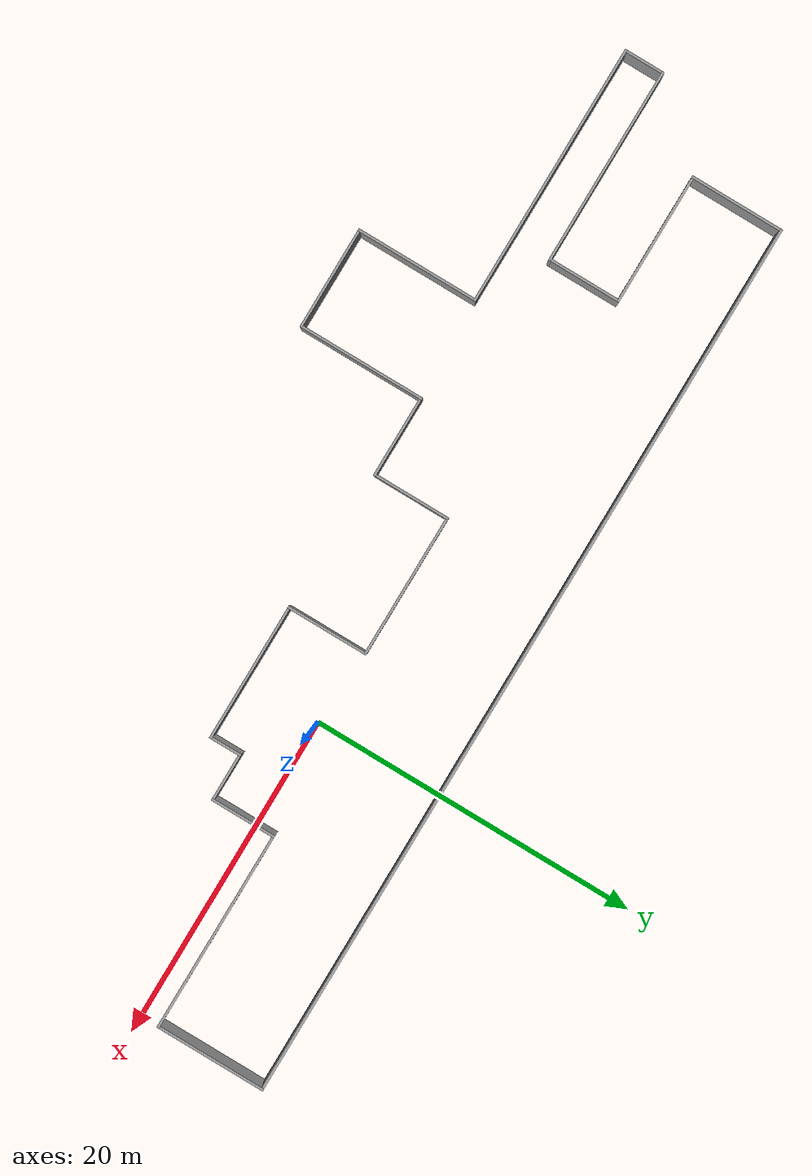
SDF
<?xml version='1.0'?>
<sdf version='1.7'>
  <model name='test_world'>
    <pose>-10.8 -2.095 0 0 -0 0</pose>
    <link name='Wall_0'>
      <collision name='Wall_0_Collision'>
        <geometry>
          <box>
            <size>8.25 0.15 2.5</size>
          </box>
        </geometry>
        <pose>0 0 1.25 0 -0 0</pose>
      </collision>
      <visual name='Wall_0_Visual'>
        <pose>0 0 1.25 0 -0 0</pose>
        <geometry>
          <box>
            <size>8.25 0.15 2.5</size>
          </box>
        </geometry>
        <material>
          <script>
            <uri>file://media/materials/scripts/gazebo.material</uri>
            <name>Gazebo/Grey</name>
          </script>
          <ambient>1 1 1 1</ambient>
        </material>
        <meta>
          <layer>0</layer>
        </meta>
      </visual>
      <pose>10.3 -2.475 0 0 -0 0</pose>
    </link>
    <link name='Wall_1'>
      <collision name='Wall_1_Collision'>
        <geometry>
          <box>
            <size>2 0.15 2.5</size>
          </box>
        </geometry>
        <pose>0 0 1.25 0 -0 0</pose>
      </collision>
      <visual name='Wall_1_Visual'>
        <pose>0 0 1.25 0 -0 0</pose>
        <geometry>
          <box>
            <size>2 0.15 2.5</size>
          </box>
        </geometry>
        <material>
          <script>
            <uri>file://media/materials/scripts/gazebo.material</uri>
            <name>Gazebo/Grey</name>
          </script>
          <ambient>1 1 1 1</ambient>
        </material>
        <meta>
          <layer>0</layer>
        </meta>
      </visual>
      <pose>14.35 -1.55 0 0 -0 1.5708</pose>
    </link>
    <link name='Wall_10'>
      <collision name='Wall_10_Collision'>
        <geometry>
          <box>
            <size>12 0.15 2.5</size>
          </box>
        </geometry>
        <pose>0 0 1.25 0 -0 0</pose>
      </collision>
      <visual name='Wall_10_Visual'>
        <pose>0 0 1.25 0 -0 0</pose>
        <geometry>
          <box>
            <size>12 0.15 2.5</size>
          </box>
        </geometry>
        <material>
          <script>
            <uri>file://media/materials/scripts/gazebo.material</uri>
            <name>Gazebo/Grey</name>
          </script>
          <ambient>1 1 1 1</ambient>
        </material>
        <meta>
          <layer>0</layer>
        </meta>
      </visual>
      <pose>-23.375 -0.125 0 0 -0 3.14159</pose>
    </link>
    <link name='Wall_11'>
      <collision name='Wall_11_Collision'>
        <geometry>
          <box>
            <size>2.5 0.15 2.5</size>
          </box>
        </geometry>
        <pose>0 0 1.25 0 -0 0</pose>
      </collision>
      <visual name='Wall_11_Visual'>
        <pose>0 0 1.25 0 -0 0</pose>
        <geometry>
          <box>
            <size>2.5 0.15 2.5</size>
          </box>
        </geometry>
        <material>
          <script>
            <uri>file://media/materials/scripts/gazebo.material</uri>
            <name>Gazebo/Grey</name>
          </script>
          <ambient>1 1 1 1</ambient>
        </material>
        <meta>
          <layer>0</layer>
        </meta>
      </visual>
      <pose>-29.3 -1.3 0 0 -0 -1.5708</pose>
    </link>
    <link name='Wall_12'>
      <collision name='Wall_12_Collision'>
        <geometry>
          <box>
            <size>16 0.15 2.5</size>
          </box>
        </geometry>
        <pose>0 0 1.25 0 -0 0</pose>
      </collision>
      <visual name='Wall_12_Visual'>
        <pose>0 0 1.25 0 -0 0</pose>
        <geometry>
          <box>
            <size>16 0.15 2.5</size>
          </box>
        </geometry>
        <material>
          <script>
            <uri>file://media/materials/scripts/gazebo.material</uri>
            <name>Gazebo/Grey</name>
          </script>
          <ambient>1 1 1 1</ambient>
        </material>
        <meta>
          <layer>0</layer>
        </meta>
      </visual>
      <pose>-21.375 -2.475 0 0 -0 0</pose>
    </link>
    <link name='Wall_13'>
      <collision name='Wall_13_Collision'>
        <geometry>
          <box>
            <size>7.5 0.15 2.5</size>
          </box>
        </geometry>
        <pose>0 0 1.25 0 -0 0</pose>
      </collision>
      <visual name='Wall_13_Visual'>
        <pose>0 0 1.25 0 -0 0</pose>
        <geometry>
          <box>
            <size>7.5 0.15 2.5</size>
          </box>
        </geometry>
        <material>
          <script>
            <uri>file://media/materials/scripts/gazebo.material</uri>
            <name>Gazebo/Grey</name>
          </script>
          <ambient>1 1 1 1</ambient>
        </material>
        <meta>
          <layer>0</layer>
        </meta>
      </visual>
      <pose>-13.45 -6.15 0 0 -0 -1.5708</pose>
    </link>
    <link name='Wall_14'>
      <collision name='Wall_14_Collision'>
        <geometry>
          <box>
            <size>6.25 0.15 2.5</size>
          </box>
        </geometry>
        <pose>0 0 1.25 0 -0 0</pose>
      </collision>
      <visual name='Wall_14_Visual'>
        <pose>0 0 1.25 0 -0 0</pose>
        <geometry>
          <box>
            <size>6.25 0.15 2.5</size>
          </box>
        </geometry>
        <material>
          <script>
            <uri>file://media/materials/scripts/gazebo.material</uri>
            <name>Gazebo/Grey</name>
          </script>
          <ambient>1 1 1 1</ambient>
        </material>
        <meta>
          <layer>0</layer>
        </meta>
      </visual>
      <pose>-10.4 -9.825 0 0 -0 0</pose>
    </link>
    <link name='Wall_15'>
      <collision name='Wall_15_Collision'>
        <geometry>
          <box>
            <size>7.75 0.15 2.5</size>
          </box>
        </geometry>
        <pose>0 0 1.25 0 -0 0</pose>
      </collision>
      <visual name='Wall_15_Visual'>
        <pose>0 0 1.25 0 -0 0</pose>
        <geometry>
          <box>
            <size>7.75 0.15 2.5</size>
          </box>
        </geometry>
        <material>
          <script>
            <uri>file://media/materials/scripts/gazebo.material</uri>
            <name>Gazebo/Grey</name>
          </script>
          <ambient>1 1 1 1</ambient>
        </material>
        <meta>
          <layer>0</layer>
        </meta>
      </visual>
      <pose>-7.35 -6.025 0 0 -0 1.5708</pose>
    </link>
    <link name='Wall_16'>
      <collision name='Wall_16_Collision'>
        <geometry>
          <box>
            <size>5 0.15 2.5</size>
          </box>
        </geometry>
        <pose>0 0 1.25 0 -0 0</pose>
      </collision>
      <visual name='Wall_16_Visual'>
        <pose>0 0 1.25 0 -0 0</pose>
        <geometry>
          <box>
            <size>5 0.15 2.5</size>
          </box>
        </geometry>
        <material>
          <script>
            <uri>file://media/materials/scripts/gazebo.material</uri>
            <name>Gazebo/Grey</name>
          </script>
          <ambient>1 1 1 1</ambient>
        </material>
        <meta>
          <layer>0</layer>
        </meta>
      </visual>
      <pose>-4.925 -2.225 0 0 -0 0</pose>
    </link>
    <link name='Wall_17'>
      <collision name='Wall_17_Collision'>
        <geometry>
          <box>
            <size>4.75 0.15 2.5</size>
          </box>
        </geometry>
        <pose>0 0 1.25 0 -0 0</pose>
      </collision>
      <visual name='Wall_17_Visual'>
        <pose>0 0 1.25 0 -0 0</pose>
        <geometry>
          <box>
            <size>4.75 0.15 2.5</size>
          </box>
        </geometry>
        <material>
          <script>
            <uri>file://media/materials/scripts/gazebo.material</uri>
            <name>Gazebo/Grey</name>
          </script>
          <ambient>1 1 1 1</ambient>
        </material>
        <meta>
          <layer>0</layer>
        </meta>
      </visual>
      <pose>-2.5 0.075 0 0 -0 1.5708</pose>
    </link>
    <link name='Wall_18'>
      <collision name='Wall_18_Collision'>
        <geometry>
          <box>
            <size>8.75 0.15 2.5</size>
          </box>
        </geometry>
        <pose>0 0 1.25 0 -0 0</pose>
      </collision>
      <visual name='Wall_18_Visual'>
        <pose>0 0 1.25 0 -0 0</pose>
        <geometry>
          <box>
            <size>8.75 0.15 2.5</size>
          </box>
        </geometry>
        <material>
          <script>
            <uri>file://media/materials/scripts/gazebo.material</uri>
            <name>Gazebo/Grey</name>
          </script>
          <ambient>1 1 1 1</ambient>
        </material>
        <meta>
          <layer>0</layer>
        </meta>
      </visual>
      <pose>1.8 2.375 0 0 -0 0</pose>
    </link>
    <link name='Wall_19'>
      <collision name='Wall_19_Collision'>
        <geometry>
          <box>
            <size>5 0.15 2.5</size>
          </box>
        </geometry>
        <pose>0 0 1.25 0 -0 0</pose>
      </collision>
      <visual name='Wall_19_Visual'>
        <pose>0 0 1.25 0 -0 0</pose>
        <geometry>
          <box>
            <size>5 0.15 2.5</size>
          </box>
        </geometry>
        <material>
          <script>
            <uri>file://media/materials/scripts/gazebo.material</uri>
            <name>Gazebo/Grey</name>
          </script>
          <ambient>1 1 1 1</ambient>
        </material>
        <meta>
          <layer>0</layer>
        </meta>
      </visual>
      <pose>6.1 -0.05 0 0 -0 -1.5708</pose>
    </link>
    <link name='Wall_2'>
      <collision name='Wall_2_Collision'>
        <geometry>
          <box>
            <size>3 0.15 2.5</size>
          </box>
        </geometry>
        <pose>0 0 1.25 0 -0 0</pose>
      </collision>
      <visual name='Wall_2_Visual'>
        <pose>0 0 1.25 0 -0 0</pose>
        <geometry>
          <box>
            <size>3 0.15 2.5</size>
          </box>
        </geometry>
        <material>
          <script>
            <uri>file://media/materials/scripts/gazebo.material</uri>
            <name>Gazebo/Grey</name>
          </script>
          <ambient>1 1 1 1</ambient>
        </material>
        <meta>
          <layer>0</layer>
        </meta>
      </visual>
      <pose>15.775 -0.625 0 0 -0 0</pose>
    </link>
    <link name='Wall_3'>
      <collision name='Wall_3_Collision'>
        <geometry>
          <box>
            <size>4 0.15 2.5</size>
          </box>
        </geometry>
        <pose>0 0 1.25 0 -0 0</pose>
      </collision>
      <visual name='Wall_3_Visual'>
        <pose>0 0 1.25 0 -0 0</pose>
        <geometry>
          <box>
            <size>4 0.15 2.5</size>
          </box>
        </geometry>
        <material>
          <script>
            <uri>file://media/materials/scripts/gazebo.material</uri>
            <name>Gazebo/Grey</name>
          </script>
          <ambient>1 1 1 1</ambient>
        </material>
        <meta>
          <layer>0</layer>
        </meta>
      </visual>
      <pose>17.2 1.3 0 0 -0 1.5708</pose>
    </link>
    <link name='Wall_4'>
      <collision name='Wall_4_Collision'>
        <geometry>
          <box>
            <size>12.25 0.15 2.5</size>
          </box>
        </geometry>
        <pose>0 0 1.25 0 -0 0</pose>
      </collision>
      <visual name='Wall_4_Visual'>
        <pose>0 0 1.25 0 -0 0</pose>
        <geometry>
          <box>
            <size>12.25 0.15 2.5</size>
          </box>
        </geometry>
        <material>
          <script>
            <uri>file://media/materials/scripts/gazebo.material</uri>
            <name>Gazebo/Grey</name>
          </script>
          <ambient>1 1 1 1</ambient>
        </material>
        <meta>
          <layer>0</layer>
        </meta>
      </visual>
      <pose>23.25 3.225 0 0 -0 0</pose>
    </link>
    <link name='Wall_5'>
      <collision name='Wall_5_Collision'>
        <geometry>
          <box>
            <size>6.75 0.15 2.5</size>
          </box>
        </geometry>
        <pose>0 0 1.25 0 -0 0</pose>
      </collision>
      <visual name='Wall_5_Visual'>
        <pose>0 0 1.25 0 -0 0</pose>
        <geometry>
          <box>
            <size>6.75 0.15 2.5</size>
          </box>
        </geometry>
        <material>
          <script>
            <uri>file://media/materials/scripts/gazebo.material</uri>
            <name>Gazebo/Grey</name>
          </script>
          <ambient>1 1 1 1</ambient>
        </material>
        <meta>
          <layer>0</layer>
        </meta>
      </visual>
      <pose>29.3 6.525 0 0 -0 1.5708</pose>
    </link>
    <link name='Wall_6'>
      <collision name='Wall_6_Collision'>
        <geometry>
          <box>
            <size>54.75 0.15 2.5</size>
          </box>
        </geometry>
        <pose>0 0 1.25 0 -0 0</pose>
      </collision>
      <visual name='Wall_6_Visual'>
        <pose>0 0 1.25 0 -0 0</pose>
        <geometry>
          <box>
            <size>54.75 0.15 2.5</size>
          </box>
        </geometry>
        <material>
          <script>
            <uri>file://media/materials/scripts/gazebo.material</uri>
            <name>Gazebo/Grey</name>
          </script>
          <ambient>1 1 1 1</ambient>
        </material>
        <meta>
          <layer>0</layer>
        </meta>
      </visual>
      <pose>2 9.825 0 0 -0 3.14159</pose>
    </link>
    <link name='Wall_7'>
      <collision name='Wall_7_Collision'>
        <geometry>
          <box>
            <size>5.75 0.15 2.5</size>
          </box>
        </geometry>
        <pose>0 0 1.25 0 -0 0</pose>
      </collision>
      <visual name='Wall_7_Visual'>
        <pose>0 0 1.25 0 -0 0</pose>
        <geometry>
          <box>
            <size>5.75 0.15 2.5</size>
          </box>
        </geometry>
        <material>
          <script>
            <uri>file://media/materials/scripts/gazebo.material</uri>
            <name>Gazebo/Grey</name>
          </script>
          <ambient>1 1 1 1</ambient>
        </material>
        <meta>
          <layer>0</layer>
        </meta>
      </visual>
      <pose>-25.3 7.025 0 0 -0 -1.5708</pose>
    </link>
    <link name='Wall_8'>
      <collision name='Wall_8_Collision'>
        <geometry>
          <box>
            <size>8 0.15 2.5</size>
          </box>
        </geometry>
        <pose>0 0 1.25 0 -0 0</pose>
      </collision>
      <visual name='Wall_8_Visual'>
        <pose>0 0 1.25 0 -0 0</pose>
        <geometry>
          <box>
            <size>8 0.15 2.5</size>
          </box>
        </geometry>
        <material>
          <script>
            <uri>file://media/materials/scripts/gazebo.material</uri>
            <name>Gazebo/Grey</name>
          </script>
          <ambient>1 1 1 1</ambient>
        </material>
        <meta>
          <layer>0</layer>
        </meta>
      </visual>
      <pose>-21.375 4.225 0 0 -0 0</pose>
    </link>
    <link name='Wall_9'>
      <collision name='Wall_9_Collision'>
        <geometry>
          <box>
            <size>4.5 0.15 2.5</size>
          </box>
        </geometry>
        <pose>0 0 1.25 0 -0 0</pose>
      </collision>
      <visual name='Wall_9_Visual'>
        <pose>0 0 1.25 0 -0 0</pose>
        <geometry>
          <box>
            <size>4.5 0.15 2.5</size>
          </box>
        </geometry>
        <material>
          <script>
            <uri>file://media/materials/scripts/gazebo.material</uri>
            <name>Gazebo/Grey</name>
          </script>
          <ambient>1 1 1 1</ambient>
        </material>
        <meta>
          <layer>0</layer>
        </meta>
      </visual>
      <pose>-17.45 2.05 0 0 -0 -1.5708</pose>
    </link>
    <static>1</static>
  </model>
</sdf>
